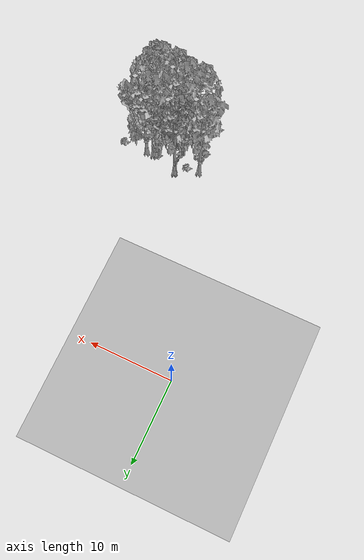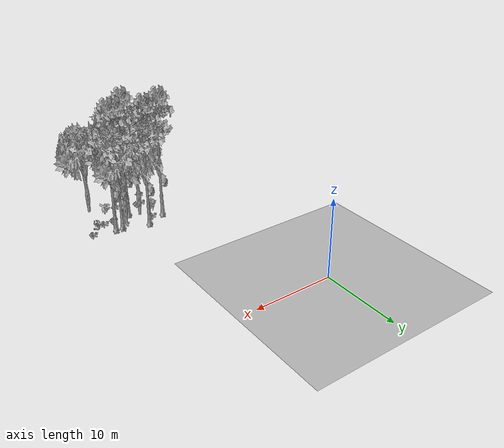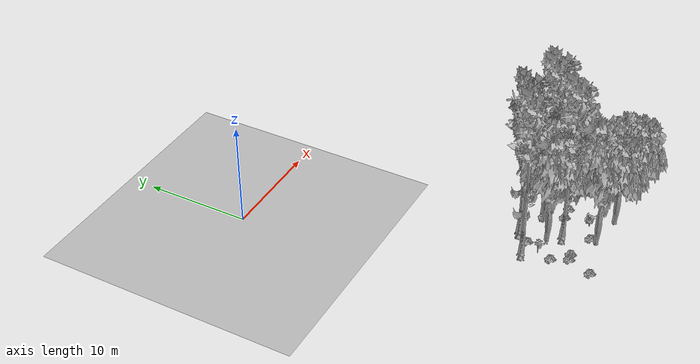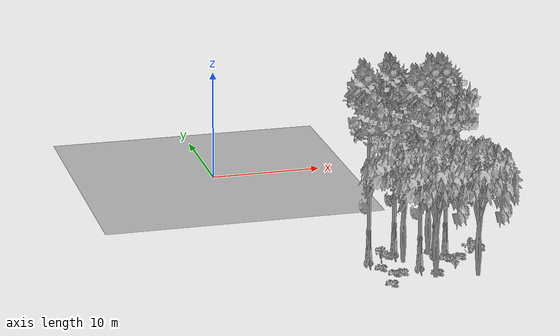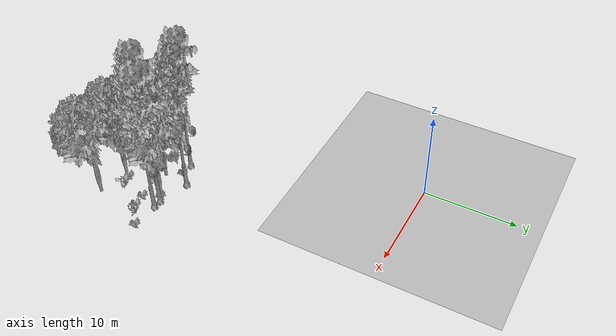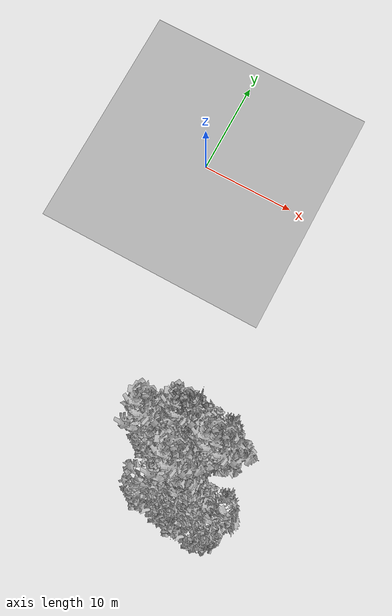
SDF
<sdf version="1.7">
 <world name="default">
  <model name="ground_plane">
   <static>1</static>
   <link name="link">
    <collision name="collision">
     <pose>-50 0 0 0 -0 0</pose>
     <geometry><plane><normal>0 0 1</normal><size>80 80</size></plane></geometry>
     <surface><contact><ode><min_depth>0.01</min_depth><max_vel>0</max_vel></ode></contact></surface>
    </collision>
    <visual name="grass">
     <cast_shadows>0</cast_shadows>
     <geometry>
      <mesh>
       <scale>0.46714285714285714 0.46714285714285714 0.1</scale>
       <uri>file://grass_plane/meshes/grass_plane.dae</uri>
      </mesh>
     </geometry>
    </visual>
   </link>
  </model>
  <model name="Tree 114">
   <static>1</static>
   <pose>10.32751547785324 -22.823314884267056 0 1.57079 -0 0</pose>
   <link name="link">
    <collision name="collision">
     <geometry><mesh><scale>3.5 5 3.5</scale><uri>model://tree_9/meshes/tree_9.obj</uri></mesh></geometry>
    </collision>
    <visual name="visual">
     <geometry><mesh><scale>3.5 5 3.5</scale><uri>model://tree_9/meshes/tree_9.obj</uri></mesh></geometry>
    </visual>
   </link>
  </model>
  <model name="Tree 188">
   <static>1</static>
   <pose>12.863036472256994 -24.180497541896678 0 1.57079 -0 0</pose>
   <link name="link">
    <collision name="collision">
     <geometry><mesh><scale>3.5 5 3.5</scale><uri>model://tree_2/meshes/tree_2.obj</uri></mesh></geometry>
    </collision>
    <visual name="visual">
     <geometry><mesh><scale>3.5 5 3.5</scale><uri>model://tree_2/meshes/tree_2.obj</uri></mesh></geometry>
    </visual>
   </link>
  </model>
  <model name="Tree 373">
   <static>1</static>
   <pose>7.728635729304962 -24.069815593995713 0 1.57079 -0 0</pose>
   <link name="link">
    <collision name="collision">
     <geometry><mesh><scale>3.5 5 3.5</scale><uri>model://tree_9/meshes/tree_9.obj</uri></mesh></geometry>
    </collision>
    <visual name="visual">
     <geometry><mesh><scale>3.5 5 3.5</scale><uri>model://tree_9/meshes/tree_9.obj</uri></mesh></geometry>
    </visual>
   </link>
  </model>
  <model name="Tree 452">
   <static>1</static>
   <pose>13.64057459774859 -23.815288933549308 0 1.57079 -0 0</pose>
   <link name="link">
    <collision name="collision">
     <geometry><mesh><scale>3.5 5 3.5</scale><uri>model://tree_9/meshes/tree_9.obj</uri></mesh></geometry>
    </collision>
    <visual name="visual">
     <geometry><mesh><scale>3.5 5 3.5</scale><uri>model://tree_9/meshes/tree_9.obj</uri></mesh></geometry>
    </visual>
   </link>
  </model>
  <model name="Tree 560">
   <static>1</static>
   <pose>10.279295946709802 -25.41233447790934 0 1.57079 -0 0</pose>
   <link name="link">
    <collision name="collision">
     <geometry><mesh><scale>3.5 5 3.5</scale><uri>model://tree_2/meshes/tree_2.obj</uri></mesh></geometry>
    </collision>
    <visual name="visual">
     <geometry><mesh><scale>3.5 5 3.5</scale><uri>model://tree_2/meshes/tree_2.obj</uri></mesh></geometry>
    </visual>
   </link>
  </model>
  <model name="Tree 563">
   <static>1</static>
   <pose>11.486392789518192 -26.461186444414615 0 1.57079 -0 0</pose>
   <link name="link">
    <collision name="collision">
     <geometry><mesh><scale>3.5 5 3.5</scale><uri>model://tree_9/meshes/tree_9.obj</uri></mesh></geometry>
    </collision>
    <visual name="visual">
     <geometry><mesh><scale>3.5 5 3.5</scale><uri>model://tree_9/meshes/tree_9.obj</uri></mesh></geometry>
    </visual>
   </link>
  </model>
  <model name="Tree 568">
   <static>1</static>
   <pose>10.356931440625104 -22.779723198624893 0 1.57079 -0 0</pose>
   <link name="link">
    <collision name="collision">
     <geometry><mesh><scale>3.5 5 3.5</scale><uri>model://tree_9/meshes/tree_9.obj</uri></mesh></geometry>
    </collision>
    <visual name="visual">
     <geometry><mesh><scale>3.5 5 3.5</scale><uri>model://tree_9/meshes/tree_9.obj</uri></mesh></geometry>
    </visual>
   </link>
  </model>
  <model name="Tree 599">
   <static>1</static>
   <pose>11.888483888082355 -29.442895765661568 0 1.57079 -0 0</pose>
   <link name="link">
    <collision name="collision">
     <geometry><mesh><scale>3.5 5 3.5</scale><uri>model://tree_2/meshes/tree_2.obj</uri></mesh></geometry>
    </collision>
    <visual name="visual">
     <geometry><mesh><scale>3.5 5 3.5</scale><uri>model://tree_2/meshes/tree_2.obj</uri></mesh></geometry>
    </visual>
   </link>
  </model>
  <model name="Tree 635">
   <static>1</static>
   <pose>14.556996606349927 -23.872316191884195 0 1.57079 -0 0</pose>
   <link name="link">
    <collision name="collision">
     <geometry><mesh><scale>3.5 5 3.5</scale><uri>model://tree_9/meshes/tree_9.obj</uri></mesh></geometry>
    </collision>
    <visual name="visual">
     <geometry><mesh><scale>3.5 5 3.5</scale><uri>model://tree_9/meshes/tree_9.obj</uri></mesh></geometry>
    </visual>
   </link>
  </model>
  <model name="Tree 636">
   <static>1</static>
   <pose>15.403777422302717 -29.950774535365106 0 1.57079 -0 0</pose>
   <link name="link">
    <collision name="collision">
     <geometry><mesh><scale>3.5 5 3.5</scale><uri>model://tree_2/meshes/tree_2.obj</uri></mesh></geometry>
    </collision>
    <visual name="visual">
     <geometry><mesh><scale>3.5 5 3.5</scale><uri>model://tree_2/meshes/tree_2.obj</uri></mesh></geometry>
    </visual>
   </link>
  </model>
  <model name="Bush 26">
   <static>1</static>
   <pose>8.051139285335125 -26.669712696145595 0 1.57079 -0 0</pose>
   <link name="link">
    <collision name="collision">
     <geometry><mesh><scale>2 2 2</scale><uri>model://bush_2/meshes/bush_2.obj</uri></mesh></geometry>
     <surface><contact><collide_without_contact>false</collide_without_contact></contact></surface>
    </collision>
    <visual name="visual">
     <geometry><mesh><scale>2 2 2</scale><uri>model://bush_2/meshes/bush_2.obj</uri></mesh></geometry>
    </visual>
   </link>
  </model>
  <model name="Bush 104">
   <static>1</static>
   <pose>15.293088785094483 -25.661417035205112 0 1.57079 -0 0</pose>
   <link name="link">
    <collision name="collision">
     <geometry><mesh><scale>2 2 2</scale><uri>model://bush_2/meshes/bush_2.obj</uri></mesh></geometry>
     <surface><contact><collide_without_contact>false</collide_without_contact></contact></surface>
    </collision>
    <visual name="visual">
     <geometry><mesh><scale>2 2 2</scale><uri>model://bush_2/meshes/bush_2.obj</uri></mesh></geometry>
    </visual>
   </link>
  </model>
  <model name="Bush 119">
   <static>1</static>
   <pose>8.795150520301554 -28.120202851543237 0 1.57079 -0 0</pose>
   <link name="link">
    <collision name="collision">
     <geometry><mesh><scale>2 2 2</scale><uri>model://bush_2/meshes/bush_2.obj</uri></mesh></geometry>
     <surface><contact><collide_without_contact>false</collide_without_contact></contact></surface>
    </collision>
    <visual name="visual">
     <geometry><mesh><scale>2 2 2</scale><uri>model://bush_2/meshes/bush_2.obj</uri></mesh></geometry>
    </visual>
   </link>
  </model>
  <model name="Bush 149">
   <static>1</static>
   <pose>12.30096043652987 -28.827861469335314 0 1.57079 -0 0</pose>
   <link name="link">
    <collision name="collision">
     <geometry><mesh><scale>2 2 2</scale><uri>model://bush_2/meshes/bush_2.obj</uri></mesh></geometry>
     <surface><contact><collide_without_contact>false</collide_without_contact></contact></surface>
    </collision>
    <visual name="visual">
     <geometry><mesh><scale>2 2 2</scale><uri>model://bush_2/meshes/bush_2.obj</uri></mesh></geometry>
    </visual>
   </link>
  </model>
  <model name="Bush 152">
   <static>1</static>
   <pose>8.502235296019606 -25.306838360497146 0 1.57079 -0 0</pose>
   <link name="link">
    <collision name="collision">
     <geometry><mesh><scale>2 2 2</scale><uri>model://bush_5/meshes/bush_5.obj</uri></mesh></geometry>
     <surface><contact><collide_without_contact>false</collide_without_contact></contact></surface>
    </collision>
    <visual name="visual">
     <geometry><mesh><scale>2 2 2</scale><uri>model://bush_5/meshes/bush_5.obj</uri></mesh></geometry>
    </visual>
   </link>
  </model>
  <model name="Bush 173">
   <static>1</static>
   <pose>7.91156075245555 -30.35181247590313 0 1.57079 -0 0</pose>
   <link name="link">
    <collision name="collision">
     <geometry><mesh><scale>2 2 2</scale><uri>model://bush_2/meshes/bush_2.obj</uri></mesh></geometry>
     <surface><contact><collide_without_contact>false</collide_without_contact></contact></surface>
    </collision>
    <visual name="visual">
     <geometry><mesh><scale>2 2 2</scale><uri>model://bush_2/meshes/bush_2.obj</uri></mesh></geometry>
    </visual>
   </link>
  </model>
  <model name="Bush 219">
   <static>1</static>
   <pose>16.489827376055715 -24.875701067197884 0 1.57079 -0 0</pose>
   <link name="link">
    <collision name="collision">
     <geometry><mesh><scale>2 2 2</scale><uri>model://bush_4/meshes/bush_4.obj</uri></mesh></geometry>
     <surface><contact><collide_without_contact>false</collide_without_contact></contact></surface>
    </collision>
    <visual name="visual">
     <geometry><mesh><scale>2 2 2</scale><uri>model://bush_4/meshes/bush_4.obj</uri></mesh></geometry>
    </visual>
   </link>
  </model>
  <model name="Bush 223">
   <static>1</static>
   <pose>9.481854738620939 -28.017594351079424 0 1.57079 -0 0</pose>
   <link name="link">
    <collision name="collision">
     <geometry><mesh><scale>2 2 2</scale><uri>model://bush_2/meshes/bush_2.obj</uri></mesh></geometry>
     <surface><contact><collide_without_contact>false</collide_without_contact></contact></surface>
    </collision>
    <visual name="visual">
     <geometry><mesh><scale>2 2 2</scale><uri>model://bush_2/meshes/bush_2.obj</uri></mesh></geometry>
    </visual>
   </link>
  </model>
  <model name="Bush 242">
   <static>1</static>
   <pose>13.19071095698341 -24.022325418510803 0 1.57079 -0 0</pose>
   <link name="link">
    <collision name="collision">
     <geometry><mesh><scale>2 2 2</scale><uri>model://bush_2/meshes/bush_2.obj</uri></mesh></geometry>
     <surface><contact><collide_without_contact>false</collide_without_contact></contact></surface>
    </collision>
    <visual name="visual">
     <geometry><mesh><scale>2 2 2</scale><uri>model://bush_2/meshes/bush_2.obj</uri></mesh></geometry>
    </visual>
   </link>
  </model>
  <model name="Bush 307">
   <static>1</static>
   <pose>17.557747363185968 -23.994120376940415 0 1.57079 -0 0</pose>
   <link name="link">
    <collision name="collision">
     <geometry><mesh><scale>2 2 2</scale><uri>model://bush_2/meshes/bush_2.obj</uri></mesh></geometry>
     <surface><contact><collide_without_contact>false</collide_without_contact></contact></surface>
    </collision>
    <visual name="visual">
     <geometry><mesh><scale>2 2 2</scale><uri>model://bush_2/meshes/bush_2.obj</uri></mesh></geometry>
    </visual>
   </link>
  </model>
  <model name="Bush 323">
   <static>1</static>
   <pose>14.107872221475304 -28.05826068147774 0 1.57079 -0 0</pose>
   <link name="link">
    <collision name="collision">
     <geometry><mesh><scale>2 2 2</scale><uri>model://bush_0/meshes/bush_0.obj</uri></mesh></geometry>
     <surface><contact><collide_without_contact>false</collide_without_contact></contact></surface>
    </collision>
    <visual name="visual">
     <geometry><mesh><scale>2 2 2</scale><uri>model://bush_0/meshes/bush_0.obj</uri></mesh></geometry>
    </visual>
   </link>
  </model>
  <model name="Bush 350">
   <static>1</static>
   <pose>13.99942516765033 -25.753620365182783 0 1.57079 -0 0</pose>
   <link name="link">
    <collision name="collision">
     <geometry><mesh><scale>2 2 2</scale><uri>model://bush_2/meshes/bush_2.obj</uri></mesh></geometry>
     <surface><contact><collide_without_contact>false</collide_without_contact></contact></surface>
    </collision>
    <visual name="visual">
     <geometry><mesh><scale>2 2 2</scale><uri>model://bush_2/meshes/bush_2.obj</uri></mesh></geometry>
    </visual>
   </link>
  </model>
  <model name="Bush 594">
   <static>1</static>
   <pose>9.268124490833017 -24.019813608554017 0 1.57079 -0 0</pose>
   <link name="link">
    <collision name="collision">
     <geometry><mesh><scale>2 2 2</scale><uri>model://bush_2/meshes/bush_2.obj</uri></mesh></geometry>
     <surface><contact><collide_without_contact>false</collide_without_contact></contact></surface>
    </collision>
    <visual name="visual">
     <geometry><mesh><scale>2 2 2</scale><uri>model://bush_2/meshes/bush_2.obj</uri></mesh></geometry>
    </visual>
   </link>
  </model>
 </world>
</sdf>
